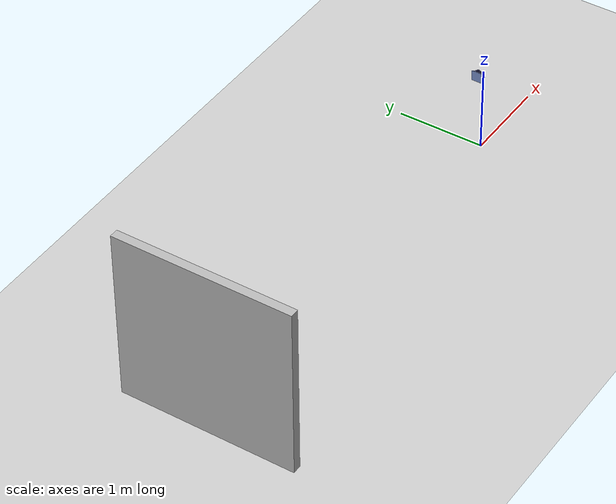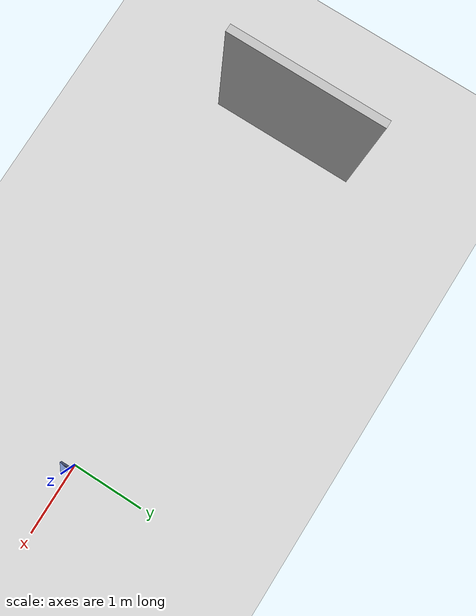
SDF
<?xml version="1.0" ?>
<sdf version="1.6">
    <world name="camera_calibration">
        <include>
            <uri>model://ground_plane</uri>
        </include>
        <include>
            <uri>model://sun</uri>
        </include>
        <include>
            <uri>model://chekerboard_pattern</uri>
            <pose>-5 0 0 0 0 0</pose>
            <static>false</static>
            <plugin name="model_push" filename="libmodel_push.so"/>
        </include>
        <include>
            <uri>model://camera</uri>
            <pose>0 0 1 0 0 3.14</pose>
        </include>
    </world>
</sdf>

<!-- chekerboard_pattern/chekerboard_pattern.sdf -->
<sdf version="1.5">
    <model name="chekerboard_pattern">
    <static>true</static>
        <link name="link">
        <visual name="visual">
            <pose>-0.05 0 1 0 0 1.570796</pose>
            <geometry>
            <mesh>
                <uri>model://chekerboard_pattern/meshes/calibration_pattern_8x8_2m.dae</uri>
            </mesh>
            </geometry>
        </visual>
        </link>
    </model>
</sdf>

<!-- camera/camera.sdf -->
<sdf version="1.5">
    <model name="camera">
    <static>true</static>
        <link name="link">
        <visual name="visual">
            <pose>0 0 0 0 0 -1.57</pose>
            <geometry>
            <mesh>
                <uri>model://camera/meshes/camera.dae</uri>
            </mesh>
            </geometry>
        </visual>
        <sensor name="camera" type="camera">
            <camera>
            <horizontal_fov>1.047</horizontal_fov>
            <image>
                <width>640</width>
                <height>480</height>
            </image>
            <clip>
                <near>0.1</near>
                <far>100</far>
            </clip>
            <distortion>
                <k1>0</k1>
                <k2>0</k2>
                <k3>0</k3>
                <p1>0</p1>
                <p2>0</p2>
                <center>0.5 0.5</center>
            </distortion>
            </camera>
            <always_on>1</always_on>
            <update_rate>10</update_rate>
            <visualize>true</visualize>
        </sensor>
        </link>
    </model>
</sdf>
